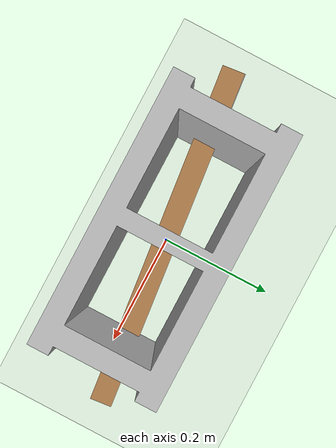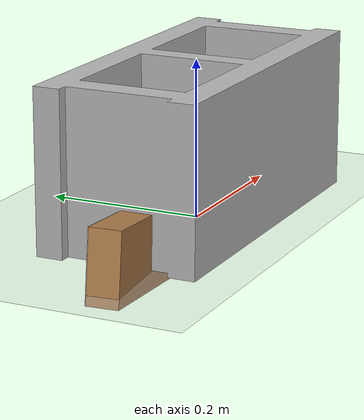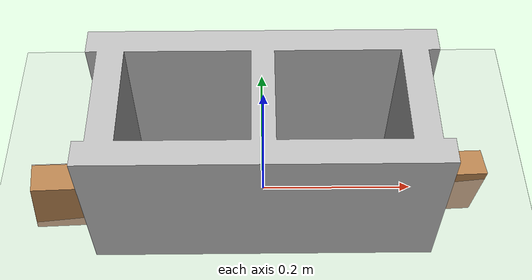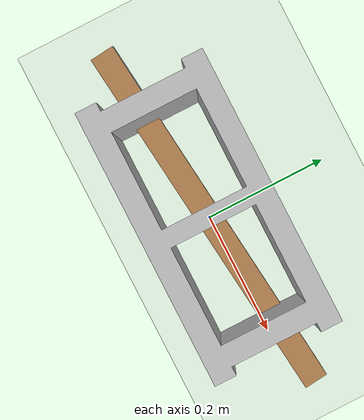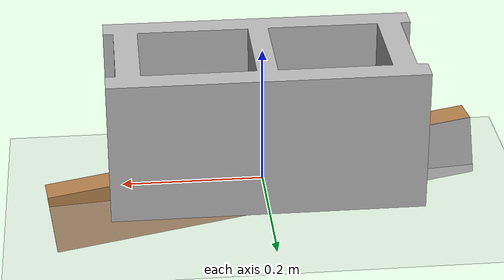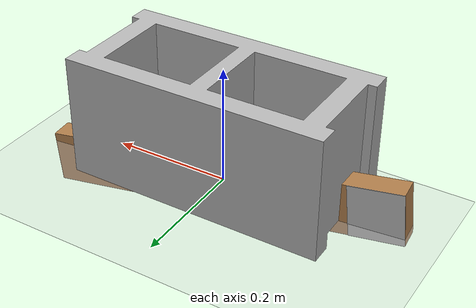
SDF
<sdf version="1.6">
 <world name="default">
  <plugin name="ros_interface_plugin" filename="librotors_gazebo_ros_interface_plugin.so"/>
  <light name="sun" type="directional">
   <pose>0 0 10 0 -0 0</pose>
   <diffuse>0.8 0.8 0.8 1</diffuse>
   <specular>0.2 0.2 0.2 1</specular>
   <attenuation>
    <range>1000</range>
    <constant>0.9</constant>
    <linear>0.01</linear>
    <quadratic>0.001</quadratic>
   </attenuation>
   <direction>-0.5 0.1 -0.9</direction>
  </light>
  <model name="ground_plane">
   <static>1</static>
   <link name="link">
    <collision name="collision">
     <geometry><plane><normal>0 0 1</normal><size>100 100</size></plane></geometry>
     <surface><friction><ode><mu>100</mu><mu2>50</mu2></ode></friction></surface>
    </collision>
    <visual name="visual">
     <cast_shadows>0</cast_shadows>
     <geometry><plane><normal>0 0 1</normal><size>100 100</size></plane></geometry>
     <material>
      <script><uri>file://media/materials/scripts/gazebo.material</uri><name>Gazebo/Grey</name></script>
     </material>
    </visual>
    <velocity_decay><linear>0</linear><angular>0</angular></velocity_decay>
   </link>
  </model>
  <physics name="default_physics" default="0" type="ode">
   <ode>
    <solver>
     <type>quick</type>
     <iters>1000</iters>
     <sor>1.3</sor>
     <use_dynamic_moi_rescaling>0</use_dynamic_moi_rescaling>
    </solver>
    <constraints>
     <cfm>0</cfm>
     <erp>0.2</erp>
     <contact_max_correcting_vel>100</contact_max_correcting_vel>
     <contact_surface_layer>0.001</contact_surface_layer>
    </constraints>
   </ode>
   <max_step_size>0.005</max_step_size>
   <real_time_factor>1</real_time_factor>
   <real_time_update_rate>200</real_time_update_rate>
  </physics>
  <scene><ambient>0.4 0.4 0.4 1</ambient><background>0.7 0.7 0.7 1</background><shadows>1</shadows></scene>
  <include><uri>model://ground_plane</uri></include>
  <include><uri>model://sun</uri></include>
  <model name="cinder_block">
   <link name="link">
    <pose>0 0 0 -0 0 1.57079</pose>
    <inertial>
     <pose>0 0 0.1016 0 -0 0</pose>
     <mass>5</mass>
     <inertia>
      <ixx>0.028705</ixx>
      <ixy>0</ixy>
      <iyy>0.073708</iyy>
      <ixz>0</ixz>
      <iyz>0</iyz>
      <izz>0.06908</izz>
     </inertia>
    </inertial>
    <visual name="visual">
     <geometry><mesh><uri>model://cinder_block/meshes/cinder_block.dae</uri></mesh></geometry>
    </visual>
    <collision name="left">
     <pose>0 -0.08465 0.1016 0 -0 0</pose>
     <geometry><box><size>0.43495 0.0339 0.2032</size></box></geometry>
     <surface>
      <contact><ode><max_vel>0.1</max_vel><min_depth>0.001</min_depth></ode></contact>
      <friction><ode><mu>1</mu><mu2>1</mu2></ode></friction>
     </surface>
    </collision>
    <collision name="right">
     <pose>0 0.08465 0.1016 0 -0 0</pose>
     <geometry><box><size>0.43495 0.0339 0.2032</size></box></geometry>
     <surface>
      <contact><ode><max_vel>0.1</max_vel><min_depth>0.001</min_depth></ode></contact>
      <friction><ode><mu>1</mu><mu2>1</mu2></ode></friction>
     </surface>
    </collision>
    <collision name="front">
     <pose>0.18625 0 0.1016 0 -0 0</pose>
     <geometry><box><size>0.0339 0.1354 0.203</size></box></geometry>
     <surface>
      <contact><ode><max_vel>0.1</max_vel><min_depth>0.001</min_depth></ode></contact>
      <friction><ode><mu>1</mu><mu2>1</mu2></ode></friction>
     </surface>
    </collision>
    <collision name="middle">
     <pose>0 0 0.1016 0 -0 0</pose>
     <geometry><box><size>0.0339 0.1354 0.203</size></box></geometry>
     <surface>
      <contact><ode><max_vel>0.1</max_vel><min_depth>0.001</min_depth></ode></contact>
      <friction><ode><mu>1</mu><mu2>1</mu2></ode></friction>
     </surface>
    </collision>
    <collision name="back">
     <pose>-0.18625 0 0.1016 0 -0 0</pose>
     <geometry><box><size>0.0339 0.1354 0.203</size></box></geometry>
     <surface>
      <contact><ode><max_vel>0.1</max_vel><min_depth>0.001</min_depth></ode></contact>
      <friction><ode><mu>1</mu><mu2>1</mu2></ode></friction>
     </surface>
    </collision>
   </link>
   <pose>0 0 0 0.0 0 1.57079</pose>
  </model>
  <model name="timber_board">
   <link name="base">
    <pose>0 0 0 1.46664 0 -1.57074</pose>
    <inertial>
     <mass>0.2765</mass>
     <inertia>
      <ixx>0.0025148</ixx>
      <ixy>0</ixy>
      <ixz>0</ixz>
      <iyy>0.00024037</iyy>
      <iyz>0</iyz>
      <izz>0.00275013</izz>
     </inertia>
    </inertial>
    <collision name="collision">
     <geometry><box><size>0.089 0.609 0.039</size></box></geometry>
     <surface>
      <contact>
       <poissons_ratio>0.347</poissons_ratio>
       <elastic_modulus>8.8e+09</elastic_modulus>
       <ode><kp>100000</kp><kd>100</kd><max_vel>100</max_vel><min_depth>0.001</min_depth></ode>
      </contact>
      <friction>
       <torsional>
        <coefficient>1</coefficient>
        <use_patch_radius>0</use_patch_radius>
        <surface_radius>0.01</surface_radius>
       </torsional>
      </friction>
     </surface>
    </collision>
    <visual name="visual">
     <geometry><box><size>0.089 0.609 0.039</size></box></geometry>
     <material>
      <script><uri>file://media/materials/scripts/gazebo.material</uri><name>Gazebo/Wood</name></script>
     </material>
    </visual>
    <visual name="apriltag_Visual">
     <pose>0 0.26 0.02 0 -0 0</pose>
     <geometry><box><size>0.089 0.089 0.001</size></box></geometry>
     <material>
      <script>
       <uri>model://Apriltag36_11_00000/materials/scripts</uri>
       <uri>model://Apriltag36_11_00000/materials/textures</uri>
       <name>Apriltag36_11_00000</name>
      </script>
     </material>
    </visual>
   </link>
   <pose>0 0 0 1.46664 0 -1.57074</pose>
  </model>
 </world>
</sdf>
